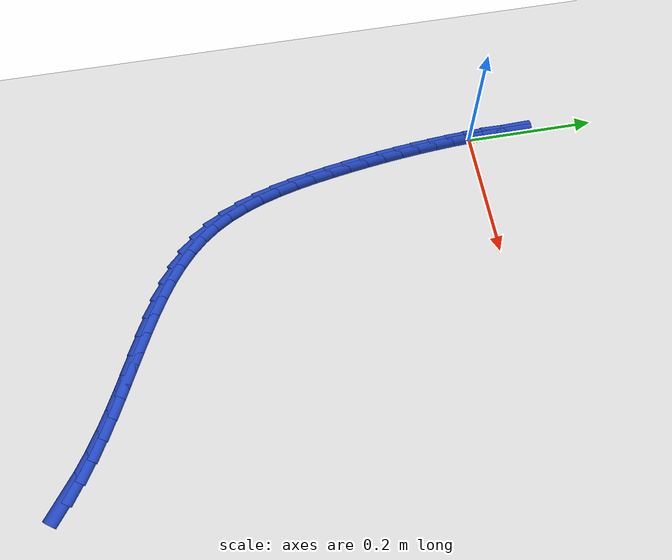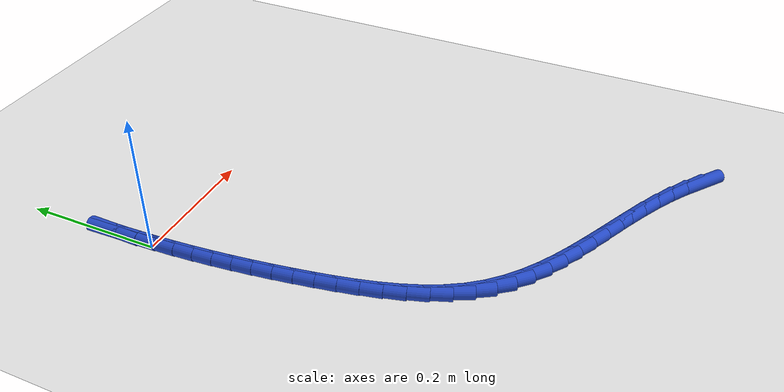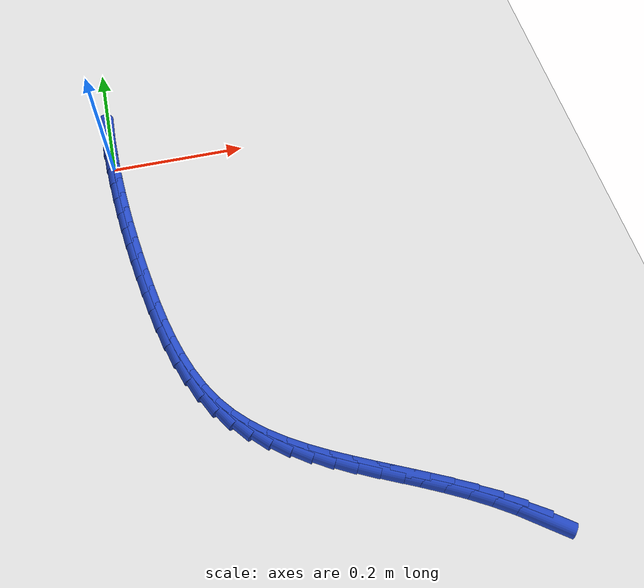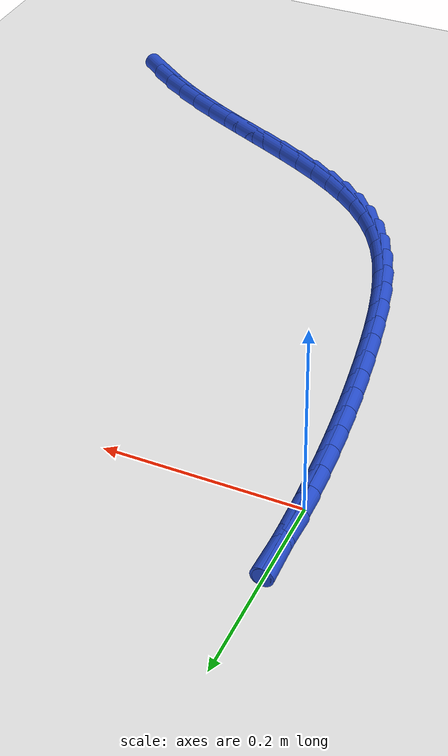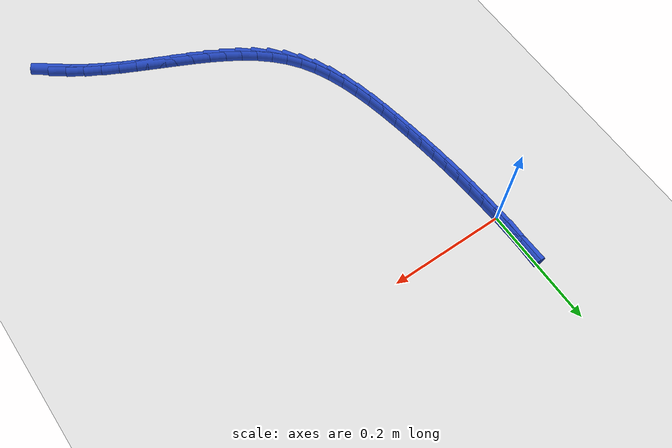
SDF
<sdf version="1.6">
 <world name="default">
  <model name="ground_plane">
   <static>1</static>
   <link name="link">
    <collision name="collision">
     <geometry><plane><normal>0 0 1</normal><size>100 100</size></plane></geometry>
     <surface><friction><ode><mu>100</mu><mu2>50</mu2></ode></friction></surface>
    </collision>
    <visual name="visual">
     <cast_shadows>0</cast_shadows>
     <geometry><plane><normal>0 0 1</normal><size>100 100</size></plane></geometry>
     <material>
      <script><uri>file://media/materials/scripts/gazebo.material</uri><name>Gazebo/WhiteGlow</name></script>
     </material>
    </visual>
   </link>
  </model>
  <model name="line">
   <link name="link_0">
    <pose>-7.765598060427426e-18 6.938893903907228e-18 0.01 0 1.57 -1.5346862681462767</pose>
    <collision name="collision">
     <geometry><cylinder><radius>0.01</radius><length>0.08</length></cylinder></geometry>
    </collision>
    <visual name="visual">
     <material>
      <script><name>Gazebo/Blue</name><uri>file://media/materials/scripts/gazebo.material</uri></script>
     </material>
     <geometry><cylinder><radius>0.01</radius><length>0.08</length></cylinder></geometry>
    </visual>
   </link>
   <link name="link_1">
    <pose>-0.0010485585645357792 0.02902523044638611 0.01 0 1.57 -1.5600147824058368</pose>
    <collision name="collision">
     <geometry><cylinder><radius>0.01</radius><length>0.08</length></cylinder></geometry>
    </collision>
    <visual name="visual">
     <material>
      <script><name>Gazebo/Blue</name><uri>file://media/materials/scripts/gazebo.material</uri></script>
     </material>
     <geometry><cylinder><radius>0.01</radius><length>0.08</length></cylinder></geometry>
    </visual>
   </link>
   <link name="link_2">
    <pose>-0.0013635878956722515 0.05824341229114953 0.01 0 1.57 1.5468679772924028</pose>
    <collision name="collision">
     <geometry><cylinder><radius>0.01</radius><length>0.08</length></cylinder></geometry>
    </collision>
    <visual name="visual">
     <material>
      <script><name>Gazebo/Blue</name><uri>file://media/materials/scripts/gazebo.material</uri></script>
     </material>
     <geometry><cylinder><radius>0.01</radius><length>0.08</length></cylinder></geometry>
    </visual>
   </link>
   <link name="link_260">
    <pose>0.45182345398073126 -0.6441734916764303 0.01 0 1.57 -0.633460726164338</pose>
    <collision name="collision">
     <geometry><cylinder><radius>0.01</radius><length>0.08</length></cylinder></geometry>
    </collision>
    <visual name="visual">
     <material>
      <script><name>Gazebo/Blue</name><uri>file://media/materials/scripts/gazebo.material</uri></script>
     </material>
     <geometry><cylinder><radius>0.01</radius><length>0.08</length></cylinder></geometry>
    </visual>
   </link>
   <link name="link_261">
    <pose>0.4274640643631266 -0.6262832583922553 0.01 0 1.57 -0.5704175475238744</pose>
    <collision name="collision">
     <geometry><cylinder><radius>0.01</radius><length>0.08</length></cylinder></geometry>
    </collision>
    <visual name="visual">
     <material>
      <script><name>Gazebo/Blue</name><uri>file://media/materials/scripts/gazebo.material</uri></script>
     </material>
     <geometry><cylinder><radius>0.01</radius><length>0.08</length></cylinder></geometry>
    </visual>
   </link>
   <link name="link_262">
    <pose>0.40207054015857474 -0.6099918448062654 0.01 0 1.57 -0.5194151368191182</pose>
    <collision name="collision">
     <geometry><cylinder><radius>0.01</radius><length>0.08</length></cylinder></geometry>
    </collision>
    <visual name="visual">
     <material>
      <script><name>Gazebo/Blue</name><uri>file://media/materials/scripts/gazebo.material</uri></script>
     </material>
     <geometry><cylinder><radius>0.01</radius><length>0.08</length></cylinder></geometry>
    </visual>
   </link>
   <link name="link_263">
    <pose>0.37589212950947903 -0.5950234093677436 0.01 0 1.57 -0.4805015264234183</pose>
    <collision name="collision">
     <geometry><cylinder><radius>0.01</radius><length>0.08</length></cylinder></geometry>
    </collision>
    <visual name="visual">
     <material>
      <script><name>Gazebo/Blue</name><uri>file://media/materials/scripts/gazebo.material</uri></script>
     </material>
     <geometry><cylinder><radius>0.01</radius><length>0.08</length></cylinder></geometry>
    </visual>
   </link>
   <link name="link_264">
    <pose>0.34917418923250826 -0.5810967239117505 0.01 0 1.57 -0.4535306470304938</pose>
    <collision name="collision">
     <geometry><cylinder><radius>0.01</radius><length>0.08</length></cylinder></geometry>
    </collision>
    <visual name="visual">
     <material>
      <script><name>Gazebo/Blue</name><uri>file://media/materials/scripts/gazebo.material</uri></script>
     </material>
     <geometry><cylinder><radius>0.01</radius><length>0.08</length></cylinder></geometry>
    </visual>
   </link>
   <link name="link_265">
    <pose>0.32216207614433207 -0.5679305602733484 0.01 0 1.57 -0.43839895335358464</pose>
    <collision name="collision">
     <geometry><cylinder><radius>0.01</radius><length>0.08</length></cylinder></geometry>
    </collision>
    <visual name="visual">
     <material>
      <script><name>Gazebo/Blue</name><uri>file://media/materials/scripts/gazebo.material</uri></script>
     </material>
     <geometry><cylinder><radius>0.01</radius><length>0.08</length></cylinder></geometry>
    </visual>
   </link>
   <link name="link_266">
    <pose>0.29510114706161744 -0.5552436902875971 0.01 0 1.57 -0.4351616862759493</pose>
    <collision name="collision">
     <geometry><cylinder><radius>0.01</radius><length>0.08</length></cylinder></geometry>
    </collision>
    <visual name="visual">
     <material>
      <script><name>Gazebo/Blue</name><uri>file://media/materials/scripts/gazebo.material</uri></script>
     </material>
     <geometry><cylinder><radius>0.01</radius><length>0.08</length></cylinder></geometry>
    </visual>
   </link>
   <link name="link_267">
    <pose>0.26823675880103415 -0.5427548857895589 0.01 0 1.57 -0.4441053720391025</pose>
    <collision name="collision">
     <geometry><cylinder><radius>0.01</radius><length>0.08</length></cylinder></geometry>
    </collision>
    <visual name="visual">
     <material>
      <script><name>Gazebo/Blue</name><uri>file://media/materials/scripts/gazebo.material</uri></script>
     </material>
     <geometry><cylinder><radius>0.01</radius><length>0.08</length></cylinder></geometry>
    </visual>
   </link>
   <link name="link_268">
    <pose>0.24181426817925095 -0.5301829186142945 0.01 0 1.57 -0.4657821599326942</pose>
    <collision name="collision">
     <geometry><cylinder><radius>0.01</radius><length>0.08</length></cylinder></geometry>
    </collision>
    <visual name="visual">
     <material>
      <script><name>Gazebo/Blue</name><uri>file://media/materials/scripts/gazebo.material</uri></script>
     </material>
     <geometry><cylinder><radius>0.01</radius><length>0.08</length></cylinder></geometry>
    </visual>
   </link>
   <link name="link_269">
    <pose>0.21607903201293668 -0.5172465605968654 0.01 0 1.57 -0.5010005830294798</pose>
    <collision name="collision">
     <geometry><cylinder><radius>0.01</radius><length>0.08</length></cylinder></geometry>
    </collision>
    <visual name="visual">
     <material>
      <script><name>Gazebo/Blue</name><uri>file://media/materials/scripts/gazebo.material</uri></script>
     </material>
     <geometry><cylinder><radius>0.01</radius><length>0.08</length></cylinder></geometry>
    </visual>
   </link>
   <link name="link_270">
    <pose>0.19127640711876004 -0.5036645835723326 0.01 0 1.57 -0.5507510416036774</pose>
    <collision name="collision">
     <geometry><cylinder><radius>0.01</radius><length>0.08</length></cylinder></geometry>
    </collision>
    <visual name="visual">
     <material>
      <script><name>Gazebo/Blue</name><uri>file://media/materials/scripts/gazebo.material</uri></script>
     </material>
     <geometry><cylinder><radius>0.01</radius><length>0.08</length></cylinder></geometry>
    </visual>
   </link>
   <link name="link_271">
    <pose>0.16765175031338983 -0.4891557593757576 0.01 0 1.57 -0.6160256270676505</pose>
    <collision name="collision">
     <geometry><cylinder><radius>0.01</radius><length>0.08</length></cylinder></geometry>
    </collision>
    <visual name="visual">
     <material>
      <script><name>Gazebo/Blue</name><uri>file://media/materials/scripts/gazebo.material</uri></script>
     </material>
     <geometry><cylinder><radius>0.01</radius><length>0.08</length></cylinder></geometry>
    </visual>
   </link>
   <link name="link_272">
    <pose>0.14545041841349496 -0.4734388598422015 0.01 0 1.57 -0.6974815460140055</pose>
    <collision name="collision">
     <geometry><cylinder><radius>0.01</radius><length>0.08</length></cylinder></geometry>
    </collision>
    <visual name="visual">
     <material>
      <script><name>Gazebo/Blue</name><uri>file://media/materials/scripts/gazebo.material</uri></script>
     </material>
     <geometry><cylinder><radius>0.01</radius><length>0.08</length></cylinder></geometry>
    </visual>
   </link>
   <link name="link_273">
    <pose>0.12491776823574406 -0.45623265680672537 0.01 0 1.57 -0.7949236038273831</pose>
    <collision name="collision">
     <geometry><cylinder><radius>0.01</radius><length>0.08</length></cylinder></geometry>
    </collision>
    <visual name="visual">
     <material>
      <script><name>Gazebo/Blue</name><uri>file://media/materials/scripts/gazebo.material</uri></script>
     </material>
     <geometry><cylinder><radius>0.01</radius><length>0.08</length></cylinder></geometry>
    </visual>
   </link>
   <link name="link_274">
    <pose>0.10629915659680608 -0.4372559221043908 0.01 0 1.57 -0.9066646391807971</pose>
    <collision name="collision">
     <geometry><cylinder><radius>0.01</radius><length>0.08</length></cylinder></geometry>
    </collision>
    <visual name="visual">
     <material>
      <script><name>Gazebo/Blue</name><uri>file://media/materials/scripts/gazebo.material</uri></script>
     </material>
     <geometry><cylinder><radius>0.01</radius><length>0.08</length></cylinder></geometry>
    </visual>
   </link>
   <link name="link_275">
    <pose>0.08983955922354371 -0.41622792002848463 0.01 0 1.57 -1.0219065833613286</pose>
    <collision name="collision">
     <geometry><cylinder><radius>0.01</radius><length>0.08</length></cylinder></geometry>
    </collision>
    <visual name="visual">
     <material>
      <script><name>Gazebo/Blue</name><uri>file://media/materials/scripts/gazebo.material</uri></script>
     </material>
     <geometry><cylinder><radius>0.01</radius><length>0.08</length></cylinder></geometry>
    </visual>
   </link>
   <link name="link_276">
    <pose>0.07565499439416498 -0.3930345584177272 0.01 0 1.57 -1.120731041366613</pose>
    <collision name="collision">
     <geometry><cylinder><radius>0.01</radius><length>0.08</length></cylinder></geometry>
    </collision>
    <visual name="visual">
     <material>
      <script><name>Gazebo/Blue</name><uri>file://media/materials/scripts/gazebo.material</uri></script>
     </material>
     <geometry><cylinder><radius>0.01</radius><length>0.08</length></cylinder></geometry>
    </visual>
   </link>
   <link name="link_277">
    <pose>0.06354546699892753 -0.36797010920241763 0.01 0 1.57 -1.2016909188744904</pose>
    <collision name="collision">
     <geometry><cylinder><radius>0.01</radius><length>0.08</length></cylinder></geometry>
    </collision>
    <visual name="visual">
     <material>
      <script><name>Gazebo/Blue</name><uri>file://media/materials/scripts/gazebo.material</uri></script>
     </material>
     <geometry><cylinder><radius>0.01</radius><length>0.08</length></cylinder></geometry>
    </visual>
   </link>
   <link name="link_278">
    <pose>0.05326346403939993 -0.3413902486716195 0.01 0 1.57 -1.266815955204932</pose>
    <collision name="collision">
     <geometry><cylinder><radius>0.01</radius><length>0.08</length></cylinder></geometry>
    </collision>
    <visual name="visual">
     <material>
      <script><name>Gazebo/Blue</name><uri>file://media/materials/scripts/gazebo.material</uri></script>
     </material>
     <geometry><cylinder><radius>0.01</radius><length>0.08</length></cylinder></geometry>
    </visual>
   </link>
   <link name="link_279">
    <pose>0.044561472517150834 -0.31365065311439705 0.01 0 1.57 -1.3181307454422877</pose>
    <collision name="collision">
     <geometry><cylinder><radius>0.01</radius><length>0.08</length></cylinder></geometry>
    </collision>
    <visual name="visual">
     <material>
      <script><name>Gazebo/Blue</name><uri>file://media/materials/scripts/gazebo.material</uri></script>
     </material>
     <geometry><cylinder><radius>0.01</radius><length>0.08</length></cylinder></geometry>
    </visual>
   </link>
   <link name="link_280">
    <pose>0.03719197943374907 -0.2851069988198151 0.01 0 1.57 -1.3573321548090131</pose>
    <collision name="collision">
     <geometry><cylinder><radius>0.01</radius><length>0.08</length></cylinder></geometry>
    </collision>
    <visual name="visual">
     <material>
      <script><name>Gazebo/Blue</name><uri>file://media/materials/scripts/gazebo.material</uri></script>
     </material>
     <geometry><cylinder><radius>0.01</radius><length>0.08</length></cylinder></geometry>
    </visual>
   </link>
   <link name="link_281">
    <pose>0.03090747179076284 -0.25611496207693585 0.01 0 1.57 -1.3856594337301704</pose>
    <collision name="collision">
     <geometry><cylinder><radius>0.01</radius><length>0.08</length></cylinder></geometry>
    </collision>
    <visual name="visual">
     <material>
      <script><name>Gazebo/Blue</name><uri>file://media/materials/scripts/gazebo.material</uri></script>
     </material>
     <geometry><cylinder><radius>0.01</radius><length>0.08</length></cylinder></geometry>
    </visual>
   </link>
   <link name="link_282">
    <pose>0.025460436589760986 -0.22703021917482408 0.01 0 1.57 -1.4042023685176532</pose>
    <collision name="collision">
     <geometry><cylinder><radius>0.01</radius><length>0.08</length></cylinder></geometry>
    </collision>
    <visual name="visual">
     <material>
      <script><name>Gazebo/Blue</name><uri>file://media/materials/scripts/gazebo.material</uri></script>
     </material>
     <geometry><cylinder><radius>0.01</radius><length>0.08</length></cylinder></geometry>
    </visual>
   </link>
   <link name="link_283">
    <pose>0.02061140508716022 -0.19819310492678285 0.01 0 1.57 -1.418898881908465</pose>
    <collision name="collision">
     <geometry><cylinder><radius>0.01</radius><length>0.08</length></cylinder></geometry>
    </collision>
    <visual name="visual">
     <material>
      <script><name>Gazebo/Blue</name><uri>file://media/materials/scripts/gazebo.material</uri></script>
     </material>
     <geometry><cylinder><radius>0.01</radius><length>0.08</length></cylinder></geometry>
    </visual>
   </link>
   <link name="link_284">
    <pose>0.0162495630776225 -0.1696985926406307 0.01 0 1.57 -1.4342555789751468</pose>
    <collision name="collision">
     <geometry><cylinder><radius>0.01</radius><length>0.08</length></cylinder></geometry>
    </collision>
    <visual name="visual">
     <material>
      <script><name>Gazebo/Blue</name><uri>file://media/materials/scripts/gazebo.material</uri></script>
     </material>
     <geometry><cylinder><radius>0.01</radius><length>0.08</length></cylinder></geometry>
    </visual>
   </link>
   <link name="link_285">
    <pose>0.012367553011967698 -0.14144434986837284 0.01 0 1.57 -1.4502465359063361</pose>
    <collision name="collision">
     <geometry><cylinder><radius>0.01</radius><length>0.08</length></cylinder></geometry>
    </collision>
    <visual name="visual">
     <material>
      <script><name>Gazebo/Blue</name><uri>file://media/materials/scripts/gazebo.material</uri></script>
     </material>
     <geometry><cylinder><radius>0.01</radius><length>0.08</length></cylinder></geometry>
    </visual>
   </link>
   <link name="link_286">
    <pose>0.008960946837569024 -0.1133224572181379 0.01 0 1.57 -1.4666937618605502</pose>
    <collision name="collision">
     <geometry><cylinder><radius>0.01</radius><length>0.08</length></cylinder></geometry>
    </collision>
    <visual name="visual">
     <material>
      <script><name>Gazebo/Blue</name><uri>file://media/materials/scripts/gazebo.material</uri></script>
     </material>
     <geometry><cylinder><radius>0.01</radius><length>0.08</length></cylinder></geometry>
    </visual>
   </link>
   <link name="link_287">
    <pose>0.006025316501799698 -0.08522499529805452 0.01 0 1.57 -1.483404187167193</pose>
    <collision name="collision">
     <geometry><cylinder><radius>0.01</radius><length>0.08</length></cylinder></geometry>
    </collision>
    <visual name="visual">
     <material>
      <script><name>Gazebo/Blue</name><uri>file://media/materials/scripts/gazebo.material</uri></script>
     </material>
     <geometry><cylinder><radius>0.01</radius><length>0.08</length></cylinder></geometry>
    </visual>
   </link>
   <link name="link_288">
    <pose>0.0035562339520329397 -0.05704404471625131 0.01 0 1.57 -1.5001774025979955</pose>
    <collision name="collision">
     <geometry><cylinder><radius>0.01</radius><length>0.08</length></cylinder></geometry>
    </collision>
    <visual name="visual">
     <material>
      <script><name>Gazebo/Blue</name><uri>file://media/materials/scripts/gazebo.material</uri></script>
     </material>
     <geometry><cylinder><radius>0.01</radius><length>0.08</length></cylinder></geometry>
    </visual>
   </link>
   <link name="link_289">
    <pose>0.0015492711356419667 -0.028671686080856938 0.01 0 1.57 -1.516813943976362</pose>
    <collision name="collision">
     <geometry><cylinder><radius>0.01</radius><length>0.08</length></cylinder></geometry>
    </collision>
    <visual name="visual">
     <material>
      <script><name>Gazebo/Blue</name><uri>file://media/materials/scripts/gazebo.material</uri></script>
     </material>
     <geometry><cylinder><radius>0.01</radius><length>0.08</length></cylinder></geometry>
    </visual>
   </link>
   <link name="link_290">
    <pose>-4.296151108473811e-18 -1.3877787807814457e-17 0.01 0 1.57 -1.5331233847221992</pose>
    <collision name="collision">
     <geometry><cylinder><radius>0.01</radius><length>0.08</length></cylinder></geometry>
    </collision>
    <visual name="visual">
     <material>
      <script><name>Gazebo/Blue</name><uri>file://media/materials/scripts/gazebo.material</uri></script>
     </material>
     <geometry><cylinder><radius>0.01</radius><length>0.08</length></cylinder></geometry>
    </visual>
   </link>
   <link name="link_291">
    <pose>-0.0010960075075197267 0.029078932918189884 0.01 0 1.57 -1.5489315356232416</pose>
    <collision name="collision">
     <geometry><cylinder><radius>0.01</radius><length>0.08</length></cylinder></geometry>
    </collision>
    <visual name="visual">
     <material>
      <script><name>Gazebo/Blue</name><uri>file://media/materials/scripts/gazebo.material</uri></script>
     </material>
     <geometry><cylinder><radius>0.01</radius><length>0.08</length></cylinder></geometry>
    </visual>
   </link>
   <link name="link_292">
    <pose>-0.0017431794395440655 0.05867303206558695 0.01 0 1.57 -1.5410950014117102</pose>
    <collision name="collision">
     <geometry><cylinder><radius>0.01</radius><length>0.08</length></cylinder></geometry>
    </collision>
    <visual name="visual">
     <material>
      <script><name>Gazebo/Blue</name><uri>file://media/materials/scripts/gazebo.material</uri></script>
     </material>
     <geometry><cylinder><radius>0.01</radius><length>0.08</length></cylinder></geometry>
    </visual>
   </link>
  </model>
 </world>
</sdf>
